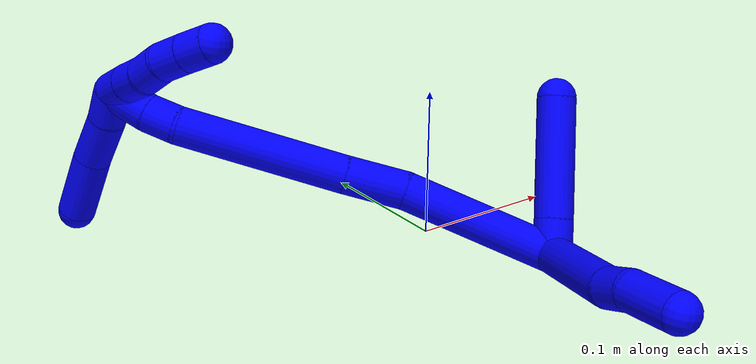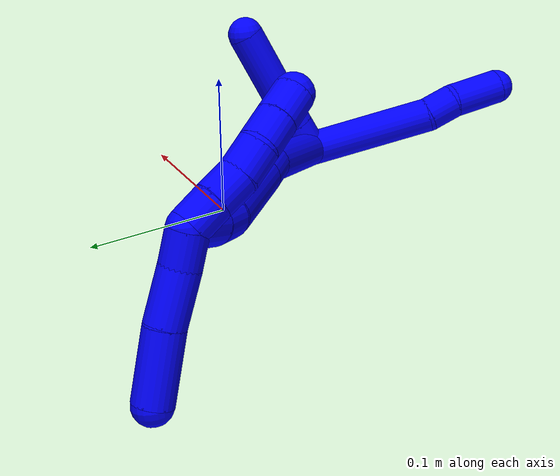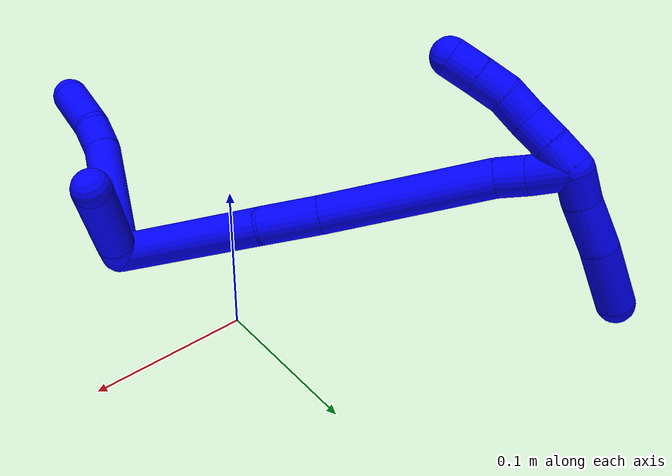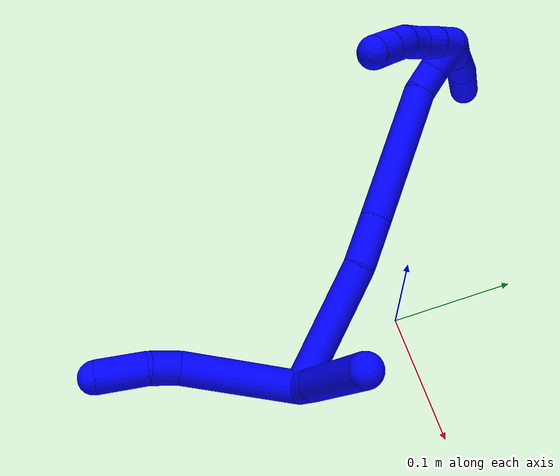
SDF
<sdf version="1.7">
 <world name="default">
  <model name="1">
   <static>0</static>
   <link name="1">
    <collision name="collision-cylinder-e_1_2_8">
     <pose>-0.034926 -0.028424 0.006551 1.34427 -0.874983 -0.712593</pose>
     <geometry><cylinder><radius>0.0125</radius><length>0.091009</length></cylinder></geometry>
     <surface>
      <friction><ode><mu>1.16</mu><mu2>1.16</mu2><slip1>0</slip1><slip2>0</slip2></ode></friction>
      <contact><ode><kp>1e+06</kp><kd>1</kd><max_vel>0</max_vel><min_depth>0.001</min_depth></ode></contact>
     </surface>
    </collision>
    <visual name="visual-cylinder-e_1_2_8">
     <pose>-0.034926 -0.028424 0.006551 1.34427 -0.874983 -0.712593</pose>
     <geometry><cylinder><radius>0.0125</radius><length>0.091009</length></cylinder></geometry>
     <material><ambient>0 0 1 1</ambient></material>
    </visual>
    <collision name="collision-cylinder-e_2_8_9">
     <pose>-0.076398 -0.064751 0.016442 1.17096 -0.651636 -0.440743</pose>
     <geometry><cylinder><radius>0.0125</radius><length>0.021583</length></cylinder></geometry>
     <surface>
      <friction><ode><mu>1.16</mu><mu2>1.16</mu2><slip1>0</slip1><slip2>0</slip2></ode></friction>
      <contact><ode><kp>1e+06</kp><kd>1</kd><max_vel>0</max_vel><min_depth>0.001</min_depth></ode></contact>
     </surface>
    </collision>
    <visual name="visual-cylinder-e_2_8_9">
     <pose>-0.076398 -0.064751 0.016442 1.17096 -0.651636 -0.440743</pose>
     <geometry><cylinder><radius>0.0125</radius><length>0.021583</length></cylinder></geometry>
     <material><ambient>0 0 1 1</ambient></material>
    </visual>
    <collision name="collision-cylinder-e_3_9_6">
     <pose>-0.092854 -0.088447 0.021264 1.47724 -0.558486 -0.510779</pose>
     <geometry><cylinder><radius>0.0125</radius><length>0.037407</length></cylinder></geometry>
     <surface>
      <friction><ode><mu>1.16</mu><mu2>1.16</mu2><slip1>0</slip1><slip2>0</slip2></ode></friction>
      <contact><ode><kp>1e+06</kp><kd>1</kd><max_vel>0</max_vel><min_depth>0.001</min_depth></ode></contact>
     </surface>
    </collision>
    <visual name="visual-cylinder-e_3_9_6">
     <pose>-0.092854 -0.088447 0.021264 1.47724 -0.558486 -0.510779</pose>
     <geometry><cylinder><radius>0.0125</radius><length>0.037407</length></cylinder></geometry>
     <material><ambient>0 0 1 1</ambient></material>
    </visual>
    <collision name="collision-cylinder-e_1_2_10">
     <pose>0.00287 0.00301 0.010367 -0.282618 0.259814 -0.037165</pose>
     <geometry><cylinder><radius>0.0125</radius><length>0.02234</length></cylinder></geometry>
     <surface>
      <friction><ode><mu>1.16</mu><mu2>1.16</mu2><slip1>0</slip1><slip2>0</slip2></ode></friction>
      <contact><ode><kp>1e+06</kp><kd>1</kd><max_vel>0</max_vel><min_depth>0.001</min_depth></ode></contact>
     </surface>
    </collision>
    <visual name="visual-cylinder-e_1_2_10">
     <pose>0.00287 0.00301 0.010367 -0.282618 0.259814 -0.037165</pose>
     <geometry><cylinder><radius>0.0125</radius><length>0.02234</length></cylinder></geometry>
     <material><ambient>0 0 1 1</ambient></material>
    </visual>
    <collision name="collision-cylinder-e_2_10_5">
     <pose>0.014662 0.016501 0.057042 -0.280994 0.231855 -0.032936</pose>
     <geometry><cylinder><radius>0.0125</radius><length>0.07766</length></cylinder></geometry>
     <surface>
      <friction><ode><mu>1.16</mu><mu2>1.16</mu2><slip1>0</slip1><slip2>0</slip2></ode></friction>
      <contact><ode><kp>1e+06</kp><kd>1</kd><max_vel>0</max_vel><min_depth>0.001</min_depth></ode></contact>
     </surface>
    </collision>
    <visual name="visual-cylinder-e_2_10_5">
     <pose>0.014662 0.016501 0.057042 -0.280994 0.231855 -0.032936</pose>
     <geometry><cylinder><radius>0.0125</radius><length>0.07766</length></cylinder></geometry>
     <material><ambient>0 0 1 1</ambient></material>
    </visual>
    <collision name="collision-cylinder-e_1_2_11">
     <pose>-0.017755 0.046335 0.010849 -1.34079 -0.357107 0.284267</pose>
     <geometry><cylinder><radius>0.0125</radius><length>0.101585</length></cylinder></geometry>
     <surface>
      <friction><ode><mu>1.16</mu><mu2>1.16</mu2><slip1>0</slip1><slip2>0</slip2></ode></friction>
      <contact><ode><kp>1e+06</kp><kd>1</kd><max_vel>0</max_vel><min_depth>0.001</min_depth></ode></contact>
     </surface>
    </collision>
    <visual name="visual-cylinder-e_1_2_11">
     <pose>-0.017755 0.046335 0.010849 -1.34079 -0.357107 0.284267</pose>
     <geometry><cylinder><radius>0.0125</radius><length>0.101585</length></cylinder></geometry>
     <material><ambient>0 0 1 1</ambient></material>
    </visual>
    <collision name="collision-cylinder-e_2_11_12">
     <pose>-0.044587 0.110083 0.023509 -1.4672 -0.478317 0.432699</pose>
     <geometry><cylinder><radius>0.0125</radius><length>0.03944</length></cylinder></geometry>
     <surface>
      <friction><ode><mu>1.16</mu><mu2>1.16</mu2><slip1>0</slip1><slip2>0</slip2></ode></friction>
      <contact><ode><kp>1e+06</kp><kd>1</kd><max_vel>0</max_vel><min_depth>0.001</min_depth></ode></contact>
     </surface>
    </collision>
    <visual name="visual-cylinder-e_2_11_12">
     <pose>-0.044587 0.110083 0.023509 -1.4672 -0.478317 0.432699</pose>
     <geometry><cylinder><radius>0.0125</radius><length>0.03944</length></cylinder></geometry>
     <material><ambient>0 0 1 1</ambient></material>
    </visual>
    <collision name="collision-cylinder-e_3_12_13">
     <pose>-0.079233 0.17599 0.032015 -1.43359 -0.481319 0.421368</pose>
     <geometry><cylinder><radius>0.0125</radius><length>0.110458</length></cylinder></geometry>
     <surface>
      <friction><ode><mu>1.16</mu><mu2>1.16</mu2><slip1>0</slip1><slip2>0</slip2></ode></friction>
      <contact><ode><kp>1e+06</kp><kd>1</kd><max_vel>0</max_vel><min_depth>0.001</min_depth></ode></contact>
     </surface>
    </collision>
    <visual name="visual-cylinder-e_3_12_13">
     <pose>-0.079233 0.17599 0.032015 -1.43359 -0.481319 0.421368</pose>
     <geometry><cylinder><radius>0.0125</radius><length>0.110458</length></cylinder></geometry>
     <material><ambient>0 0 1 1</ambient></material>
    </visual>
    <collision name="collision-cylinder-e_4_13_14">
     <pose>-0.10735 0.234422 0.040445 -1.39812 -0.247498 0.208379</pose>
     <geometry><cylinder><radius>0.0125</radius><length>0.02081</length></cylinder></geometry>
     <surface>
      <friction><ode><mu>1.16</mu><mu2>1.16</mu2><slip1>0</slip1><slip2>0</slip2></ode></friction>
      <contact><ode><kp>1e+06</kp><kd>1</kd><max_vel>0</max_vel><min_depth>0.001</min_depth></ode></contact>
     </surface>
    </collision>
    <visual name="visual-cylinder-e_4_13_14">
     <pose>-0.10735 0.234422 0.040445 -1.39812 -0.247498 0.208379</pose>
     <geometry><cylinder><radius>0.0125</radius><length>0.02081</length></cylinder></geometry>
     <material><ambient>0 0 1 1</ambient></material>
    </visual>
    <collision name="collision-cylinder-e_5_14_1">
     <pose>-0.112539 0.257314 0.046317 -1.26157 -0.191759 0.140245</pose>
     <geometry><cylinder><radius>0.0125</radius><length>0.027706</length></cylinder></geometry>
     <surface>
      <friction><ode><mu>1.16</mu><mu2>1.16</mu2><slip1>0</slip1><slip2>0</slip2></ode></friction>
      <contact><ode><kp>1e+06</kp><kd>1</kd><max_vel>0</max_vel><min_depth>0.001</min_depth></ode></contact>
     </surface>
    </collision>
    <visual name="visual-cylinder-e_5_14_1">
     <pose>-0.112539 0.257314 0.046317 -1.26157 -0.191759 0.140245</pose>
     <geometry><cylinder><radius>0.0125</radius><length>0.027706</length></cylinder></geometry>
     <material><ambient>0 0 1 1</ambient></material>
    </visual>
    <collision name="collision-cylinder-e_1_1_15">
     <pose>-0.118406 0.262259 0.055498 1.00889 -0.328531 -0.182519</pose>
     <geometry><cylinder><radius>0.0125</radius><length>0.02</length></cylinder></geometry>
     <surface>
      <friction><ode><mu>1.16</mu><mu2>1.16</mu2><slip1>0</slip1><slip2>0</slip2></ode></friction>
      <contact><ode><kp>1e+06</kp><kd>1</kd><max_vel>0</max_vel><min_depth>0.001</min_depth></ode></contact>
     </surface>
    </collision>
    <visual name="visual-cylinder-e_1_1_15">
     <pose>-0.118406 0.262259 0.055498 1.00889 -0.328531 -0.182519</pose>
     <geometry><cylinder><radius>0.0125</radius><length>0.02</length></cylinder></geometry>
     <material><ambient>0 0 1 1</ambient></material>
    </visual>
    <collision name="collision-cylinder-e_2_15_16">
     <pose>-0.124743 0.245971 0.065211 1.05716 -0.316267 -0.185723</pose>
     <geometry><cylinder><radius>0.0125</radius><length>0.02</length></cylinder></geometry>
     <surface>
      <friction><ode><mu>1.16</mu><mu2>1.16</mu2><slip1>0</slip1><slip2>0</slip2></ode></friction>
      <contact><ode><kp>1e+06</kp><kd>1</kd><max_vel>0</max_vel><min_depth>0.001</min_depth></ode></contact>
     </surface>
    </collision>
    <visual name="visual-cylinder-e_2_15_16">
     <pose>-0.124743 0.245971 0.065211 1.05716 -0.316267 -0.185723</pose>
     <geometry><cylinder><radius>0.0125</radius><length>0.02</length></cylinder></geometry>
     <material><ambient>0 0 1 1</ambient></material>
    </visual>
    <collision name="collision-cylinder-e_3_16_17">
     <pose>-0.130044 0.230098 0.076006 0.892189 -0.220884 -0.10597</pose>
     <geometry><cylinder><radius>0.0125</radius><length>0.02</length></cylinder></geometry>
     <surface>
      <friction><ode><mu>1.16</mu><mu2>1.16</mu2><slip1>0</slip1><slip2>0</slip2></ode></friction>
      <contact><ode><kp>1e+06</kp><kd>1</kd><max_vel>0</max_vel><min_depth>0.001</min_depth></ode></contact>
     </surface>
    </collision>
    <visual name="visual-cylinder-e_3_16_17">
     <pose>-0.130044 0.230098 0.076006 0.892189 -0.220884 -0.10597</pose>
     <geometry><cylinder><radius>0.0125</radius><length>0.02</length></cylinder></geometry>
     <material><ambient>0 0 1 1</ambient></material>
    </visual>
    <collision name="collision-cylinder-e_4_17_18">
     <pose>-0.132806 0.213843 0.087098 1.04993 -0.057195 -0.033132</pose>
     <geometry><cylinder><radius>0.0125</radius><length>0.02</length></cylinder></geometry>
     <surface>
      <friction><ode><mu>1.16</mu><mu2>1.16</mu2><slip1>0</slip1><slip2>0</slip2></ode></friction>
      <contact><ode><kp>1e+06</kp><kd>1</kd><max_vel>0</max_vel><min_depth>0.001</min_depth></ode></contact>
     </surface>
    </collision>
    <visual name="visual-cylinder-e_4_17_18">
     <pose>-0.132806 0.213843 0.087098 1.04993 -0.057195 -0.033132</pose>
     <geometry><cylinder><radius>0.0125</radius><length>0.02</length></cylinder></geometry>
     <material><ambient>0 0 1 1</ambient></material>
    </visual>
    <collision name="collision-cylinder-e_5_18_4">
     <pose>-0.133785 0.196428 0.096881 1.06807 -0.040754 -0.024102</pose>
     <geometry><cylinder><radius>0.0125</radius><length>0.02</length></cylinder></geometry>
     <surface>
      <friction><ode><mu>1.16</mu><mu2>1.16</mu2><slip1>0</slip1><slip2>0</slip2></ode></friction>
      <contact><ode><kp>1e+06</kp><kd>1</kd><max_vel>0</max_vel><min_depth>0.001</min_depth></ode></contact>
     </surface>
    </collision>
    <visual name="visual-cylinder-e_5_18_4">
     <pose>-0.133785 0.196428 0.096881 1.06807 -0.040754 -0.024102</pose>
     <geometry><cylinder><radius>0.0125</radius><length>0.02</length></cylinder></geometry>
     <material><ambient>0 0 1 1</ambient></material>
    </visual>
    <collision name="collision-cylinder-e_1_1_19">
     <pose>-0.112782 0.273251 0.040223 -2.85802 0.221205 -1.32236</pose>
     <geometry><cylinder><radius>0.0125</radius><length>0.021848</length></cylinder></geometry>
     <surface>
      <friction><ode><mu>1.16</mu><mu2>1.16</mu2><slip1>0</slip1><slip2>0</slip2></ode></friction>
      <contact><ode><kp>1e+06</kp><kd>1</kd><max_vel>0</max_vel><min_depth>0.001</min_depth></ode></contact>
     </surface>
    </collision>
    <visual name="visual-cylinder-e_1_1_19">
     <pose>-0.112782 0.273251 0.040223 -2.85802 0.221205 -1.32236</pose>
     <geometry><cylinder><radius>0.0125</radius><length>0.021848</length></cylinder></geometry>
     <material><ambient>0 0 1 1</ambient></material>
    </visual>
    <collision name="collision-cylinder-e_2_19_20">
     <pose>-0.107268 0.282765 0.014781 -2.73593 0.186134 -0.852085</pose>
     <geometry><cylinder><radius>0.0125</radius><length>0.033688</length></cylinder></geometry>
     <surface>
      <friction><ode><mu>1.16</mu><mu2>1.16</mu2><slip1>0</slip1><slip2>0</slip2></ode></friction>
      <contact><ode><kp>1e+06</kp><kd>1</kd><max_vel>0</max_vel><min_depth>0.001</min_depth></ode></contact>
     </surface>
    </collision>
    <visual name="visual-cylinder-e_2_19_20">
     <pose>-0.107268 0.282765 0.014781 -2.73593 0.186134 -0.852085</pose>
     <geometry><cylinder><radius>0.0125</radius><length>0.033688</length></cylinder></geometry>
     <material><ambient>0 0 1 1</ambient></material>
    </visual>
    <collision name="collision-cylinder-e_3_20_3">
     <pose>-0.100884 0.295835 -0.021425 -2.83972 0.14751 -0.904463</pose>
     <geometry><cylinder><radius>0.0125</radius><length>0.044464</length></cylinder></geometry>
     <surface>
      <friction><ode><mu>1.16</mu><mu2>1.16</mu2><slip1>0</slip1><slip2>0</slip2></ode></friction>
      <contact><ode><kp>1e+06</kp><kd>1</kd><max_vel>0</max_vel><min_depth>0.001</min_depth></ode></contact>
     </surface>
    </collision>
    <visual name="visual-cylinder-e_3_20_3">
     <pose>-0.100884 0.295835 -0.021425 -2.83972 0.14751 -0.904463</pose>
     <geometry><cylinder><radius>0.0125</radius><length>0.044464</length></cylinder></geometry>
     <material><ambient>0 0 1 1</ambient></material>
    </visual>
    <collision name="collision-sphere-3">
     <pose>-0.097616 0.302373 -0.042421 0 -0 0</pose>
     <geometry><sphere><radius>0.0125</radius></sphere></geometry>
     <surface>
      <friction><ode><mu>1.16</mu><mu2>1.16</mu2><slip1>0</slip1><slip2>0</slip2></ode></friction>
      <contact><ode><kp>1e+06</kp><kd>1</kd><max_vel>0</max_vel><min_depth>0.001</min_depth></ode></contact>
     </surface>
    </collision>
    <visual name="visual-sphere-3">
     <pose>-0.097616 0.302373 -0.042421 0 -0 0</pose>
     <geometry><sphere><radius>0.0125</radius></sphere></geometry>
     <material><ambient>0 0 1 1</ambient></material>
    </visual>
    <collision name="collision-sphere-20">
     <pose>-0.104151 0.289297 -0.000429 0 -0 0</pose>
     <geometry><sphere><radius>0.0125</radius></sphere></geometry>
     <surface>
      <friction><ode><mu>1.16</mu><mu2>1.16</mu2><slip1>0</slip1><slip2>0</slip2></ode></friction>
      <contact><ode><kp>1e+06</kp><kd>1</kd><max_vel>0</max_vel><min_depth>0.001</min_depth></ode></contact>
     </surface>
    </collision>
    <visual name="visual-sphere-20">
     <pose>-0.104151 0.289297 -0.000429 0 -0 0</pose>
     <geometry><sphere><radius>0.0125</radius></sphere></geometry>
     <material><ambient>0 0 1 1</ambient></material>
    </visual>
    <collision name="collision-sphere-19">
     <pose>-0.110386 0.276233 0.029991 0 -0 0</pose>
     <geometry><sphere><radius>0.0125</radius></sphere></geometry>
     <surface>
      <friction><ode><mu>1.16</mu><mu2>1.16</mu2><slip1>0</slip1><slip2>0</slip2></ode></friction>
      <contact><ode><kp>1e+06</kp><kd>1</kd><max_vel>0</max_vel><min_depth>0.001</min_depth></ode></contact>
     </surface>
    </collision>
    <visual name="visual-sphere-19">
     <pose>-0.110386 0.276233 0.029991 0 -0 0</pose>
     <geometry><sphere><radius>0.0125</radius></sphere></geometry>
     <material><ambient>0 0 1 1</ambient></material>
    </visual>
    <collision name="collision-sphere-5">
     <pose>0.023584 0.026981 0.093351 0 -0 0</pose>
     <geometry><sphere><radius>0.0125</radius></sphere></geometry>
     <surface>
      <friction><ode><mu>1.16</mu><mu2>1.16</mu2><slip1>0</slip1><slip2>0</slip2></ode></friction>
      <contact><ode><kp>1e+06</kp><kd>1</kd><max_vel>0</max_vel><min_depth>0.001</min_depth></ode></contact>
     </surface>
    </collision>
    <visual name="visual-sphere-5">
     <pose>0.023584 0.026981 0.093351 0 -0 0</pose>
     <geometry><sphere><radius>0.0125</radius></sphere></geometry>
     <material><ambient>0 0 1 1</ambient></material>
    </visual>
    <collision name="collision-sphere-10">
     <pose>0.005739 0.006021 0.020733 0 -0 0</pose>
     <geometry><sphere><radius>0.0125</radius></sphere></geometry>
     <surface>
      <friction><ode><mu>1.16</mu><mu2>1.16</mu2><slip1>0</slip1><slip2>0</slip2></ode></friction>
      <contact><ode><kp>1e+06</kp><kd>1</kd><max_vel>0</max_vel><min_depth>0.001</min_depth></ode></contact>
     </surface>
    </collision>
    <visual name="visual-sphere-10">
     <pose>0.005739 0.006021 0.020733 0 -0 0</pose>
     <geometry><sphere><radius>0.0125</radius></sphere></geometry>
     <material><ambient>0 0 1 1</ambient></material>
    </visual>
    <collision name="collision-sphere-6">
     <pose>-0.102765 -0.10424 0.022746 0 -0 0</pose>
     <geometry><sphere><radius>0.0125</radius></sphere></geometry>
     <surface>
      <friction><ode><mu>1.16</mu><mu2>1.16</mu2><slip1>0</slip1><slip2>0</slip2></ode></friction>
      <contact><ode><kp>1e+06</kp><kd>1</kd><max_vel>0</max_vel><min_depth>0.001</min_depth></ode></contact>
     </surface>
    </collision>
    <visual name="visual-sphere-6">
     <pose>-0.102765 -0.10424 0.022746 0 -0 0</pose>
     <geometry><sphere><radius>0.0125</radius></sphere></geometry>
     <material><ambient>0 0 1 1</ambient></material>
    </visual>
    <collision name="collision-sphere-9">
     <pose>-0.082943 -0.072655 0.019783 0 -0 0</pose>
     <geometry><sphere><radius>0.0125</radius></sphere></geometry>
     <surface>
      <friction><ode><mu>1.16</mu><mu2>1.16</mu2><slip1>0</slip1><slip2>0</slip2></ode></friction>
      <contact><ode><kp>1e+06</kp><kd>1</kd><max_vel>0</max_vel><min_depth>0.001</min_depth></ode></contact>
     </surface>
    </collision>
    <visual name="visual-sphere-9">
     <pose>-0.082943 -0.072655 0.019783 0 -0 0</pose>
     <geometry><sphere><radius>0.0125</radius></sphere></geometry>
     <material><ambient>0 0 1 1</ambient></material>
    </visual>
    <collision name="collision-sphere-2">
     <geometry><sphere><radius>0.0125</radius></sphere></geometry>
     <surface>
      <friction><ode><mu>1.16</mu><mu2>1.16</mu2><slip1>0</slip1><slip2>0</slip2></ode></friction>
      <contact><ode><kp>1e+06</kp><kd>1</kd><max_vel>0</max_vel><min_depth>0.001</min_depth></ode></contact>
     </surface>
    </collision>
    <visual name="visual-sphere-2">
     <geometry><sphere><radius>0.0125</radius></sphere></geometry>
     <material><ambient>0 0 1 1</ambient></material>
    </visual>
    <collision name="collision-sphere-8">
     <pose>-0.069853 -0.056848 0.013102 0 -0 0</pose>
     <geometry><sphere><radius>0.0125</radius></sphere></geometry>
     <surface>
      <friction><ode><mu>1.16</mu><mu2>1.16</mu2><slip1>0</slip1><slip2>0</slip2></ode></friction>
      <contact><ode><kp>1e+06</kp><kd>1</kd><max_vel>0</max_vel><min_depth>0.001</min_depth></ode></contact>
     </surface>
    </collision>
    <visual name="visual-sphere-8">
     <pose>-0.069853 -0.056848 0.013102 0 -0 0</pose>
     <geometry><sphere><radius>0.0125</radius></sphere></geometry>
     <material><ambient>0 0 1 1</ambient></material>
    </visual>
    <collision name="collision-sphere-11">
     <pose>-0.035511 0.09267 0.021699 0 -0 0</pose>
     <geometry><sphere><radius>0.0125</radius></sphere></geometry>
     <surface>
      <friction><ode><mu>1.16</mu><mu2>1.16</mu2><slip1>0</slip1><slip2>0</slip2></ode></friction>
      <contact><ode><kp>1e+06</kp><kd>1</kd><max_vel>0</max_vel><min_depth>0.001</min_depth></ode></contact>
     </surface>
    </collision>
    <visual name="visual-sphere-11">
     <pose>-0.035511 0.09267 0.021699 0 -0 0</pose>
     <geometry><sphere><radius>0.0125</radius></sphere></geometry>
     <material><ambient>0 0 1 1</ambient></material>
    </visual>
    <collision name="collision-sphere-12">
     <pose>-0.053664 0.127496 0.02532 0 -0 0</pose>
     <geometry><sphere><radius>0.0125</radius></sphere></geometry>
     <surface>
      <friction><ode><mu>1.16</mu><mu2>1.16</mu2><slip1>0</slip1><slip2>0</slip2></ode></friction>
      <contact><ode><kp>1e+06</kp><kd>1</kd><max_vel>0</max_vel><min_depth>0.001</min_depth></ode></contact>
     </surface>
    </collision>
    <visual name="visual-sphere-12">
     <pose>-0.053664 0.127496 0.02532 0 -0 0</pose>
     <geometry><sphere><radius>0.0125</radius></sphere></geometry>
     <material><ambient>0 0 1 1</ambient></material>
    </visual>
    <collision name="collision-sphere-13">
     <pose>-0.104801 0.224484 0.038711 0 -0 0</pose>
     <geometry><sphere><radius>0.0125</radius></sphere></geometry>
     <surface>
      <friction><ode><mu>1.16</mu><mu2>1.16</mu2><slip1>0</slip1><slip2>0</slip2></ode></friction>
      <contact><ode><kp>1e+06</kp><kd>1</kd><max_vel>0</max_vel><min_depth>0.001</min_depth></ode></contact>
     </surface>
    </collision>
    <visual name="visual-sphere-13">
     <pose>-0.104801 0.224484 0.038711 0 -0 0</pose>
     <geometry><sphere><radius>0.0125</radius></sphere></geometry>
     <material><ambient>0 0 1 1</ambient></material>
    </visual>
    <collision name="collision-sphere-14">
     <pose>-0.109899 0.24436 0.042178 0 -0 0</pose>
     <geometry><sphere><radius>0.0125</radius></sphere></geometry>
     <surface>
      <friction><ode><mu>1.16</mu><mu2>1.16</mu2><slip1>0</slip1><slip2>0</slip2></ode></friction>
      <contact><ode><kp>1e+06</kp><kd>1</kd><max_vel>0</max_vel><min_depth>0.001</min_depth></ode></contact>
     </surface>
    </collision>
    <visual name="visual-sphere-14">
     <pose>-0.109899 0.24436 0.042178 0 -0 0</pose>
     <geometry><sphere><radius>0.0125</radius></sphere></geometry>
     <material><ambient>0 0 1 1</ambient></material>
    </visual>
    <collision name="collision-sphere-1">
     <pose>-0.115179 0.270269 0.050455 0 -0 0</pose>
     <geometry><sphere><radius>0.0125</radius></sphere></geometry>
     <surface>
      <friction><ode><mu>1.16</mu><mu2>1.16</mu2><slip1>0</slip1><slip2>0</slip2></ode></friction>
      <contact><ode><kp>1e+06</kp><kd>1</kd><max_vel>0</max_vel><min_depth>0.001</min_depth></ode></contact>
     </surface>
    </collision>
    <visual name="visual-sphere-1">
     <pose>-0.115179 0.270269 0.050455 0 -0 0</pose>
     <geometry><sphere><radius>0.0125</radius></sphere></geometry>
     <material><ambient>0 0 1 1</ambient></material>
    </visual>
    <collision name="collision-sphere-18">
     <pose>-0.133378 0.205184 0.092066 0 -0 0</pose>
     <geometry><sphere><radius>0.0125</radius></sphere></geometry>
     <surface>
      <friction><ode><mu>1.16</mu><mu2>1.16</mu2><slip1>0</slip1><slip2>0</slip2></ode></friction>
      <contact><ode><kp>1e+06</kp><kd>1</kd><max_vel>0</max_vel><min_depth>0.001</min_depth></ode></contact>
     </surface>
    </collision>
    <visual name="visual-sphere-18">
     <pose>-0.133378 0.205184 0.092066 0 -0 0</pose>
     <geometry><sphere><radius>0.0125</radius></sphere></geometry>
     <material><ambient>0 0 1 1</ambient></material>
    </visual>
    <collision name="collision-sphere-15">
     <pose>-0.121632 0.254249 0.060541 0 -0 0</pose>
     <geometry><sphere><radius>0.0125</radius></sphere></geometry>
     <surface>
      <friction><ode><mu>1.16</mu><mu2>1.16</mu2><slip1>0</slip1><slip2>0</slip2></ode></friction>
      <contact><ode><kp>1e+06</kp><kd>1</kd><max_vel>0</max_vel><min_depth>0.001</min_depth></ode></contact>
     </surface>
    </collision>
    <visual name="visual-sphere-15">
     <pose>-0.121632 0.254249 0.060541 0 -0 0</pose>
     <geometry><sphere><radius>0.0125</radius></sphere></geometry>
     <material><ambient>0 0 1 1</ambient></material>
    </visual>
    <collision name="collision-sphere-16">
     <pose>-0.127853 0.237694 0.069881 0 -0 0</pose>
     <geometry><sphere><radius>0.0125</radius></sphere></geometry>
     <surface>
      <friction><ode><mu>1.16</mu><mu2>1.16</mu2><slip1>0</slip1><slip2>0</slip2></ode></friction>
      <contact><ode><kp>1e+06</kp><kd>1</kd><max_vel>0</max_vel><min_depth>0.001</min_depth></ode></contact>
     </surface>
    </collision>
    <visual name="visual-sphere-16">
     <pose>-0.127853 0.237694 0.069881 0 -0 0</pose>
     <geometry><sphere><radius>0.0125</radius></sphere></geometry>
     <material><ambient>0 0 1 1</ambient></material>
    </visual>
    <collision name="collision-sphere-17">
     <pose>-0.132235 0.222503 0.08213 0 -0 0</pose>
     <geometry><sphere><radius>0.0125</radius></sphere></geometry>
     <surface>
      <friction><ode><mu>1.16</mu><mu2>1.16</mu2><slip1>0</slip1><slip2>0</slip2></ode></friction>
      <contact><ode><kp>1e+06</kp><kd>1</kd><max_vel>0</max_vel><min_depth>0.001</min_depth></ode></contact>
     </surface>
    </collision>
    <visual name="visual-sphere-17">
     <pose>-0.132235 0.222503 0.08213 0 -0 0</pose>
     <geometry><sphere><radius>0.0125</radius></sphere></geometry>
     <material><ambient>0 0 1 1</ambient></material>
    </visual>
    <collision name="collision-sphere-4">
     <pose>-0.134193 0.187673 0.101695 0 -0 0</pose>
     <geometry><sphere><radius>0.0125</radius></sphere></geometry>
     <surface>
      <friction><ode><mu>1.16</mu><mu2>1.16</mu2><slip1>0</slip1><slip2>0</slip2></ode></friction>
      <contact><ode><kp>1e+06</kp><kd>1</kd><max_vel>0</max_vel><min_depth>0.001</min_depth></ode></contact>
     </surface>
    </collision>
    <visual name="visual-sphere-4">
     <pose>-0.134193 0.187673 0.101695 0 -0 0</pose>
     <geometry><sphere><radius>0.0125</radius></sphere></geometry>
     <material><ambient>0 0 1 1</ambient></material>
    </visual>
    <inertial>
     <pose>-0.064165 0.114898 0.029516 0 -0 0</pose>
     <mass>0.75</mass>
     <inertia>
      <ixx>0.000292</ixx>
      <ixy>0</ixy>
      <ixz>0</ixz>
      <iyy>0.000189</iyy>
      <iyz>0</iyz>
      <izz>-1.5e-05</izz>
     </inertia>
    </inertial>
   </link>
   <pose>0.030911 -0.08988 0.01149 0.072837 0.20514 0.441193</pose>
  </model>
 </world>
</sdf>
